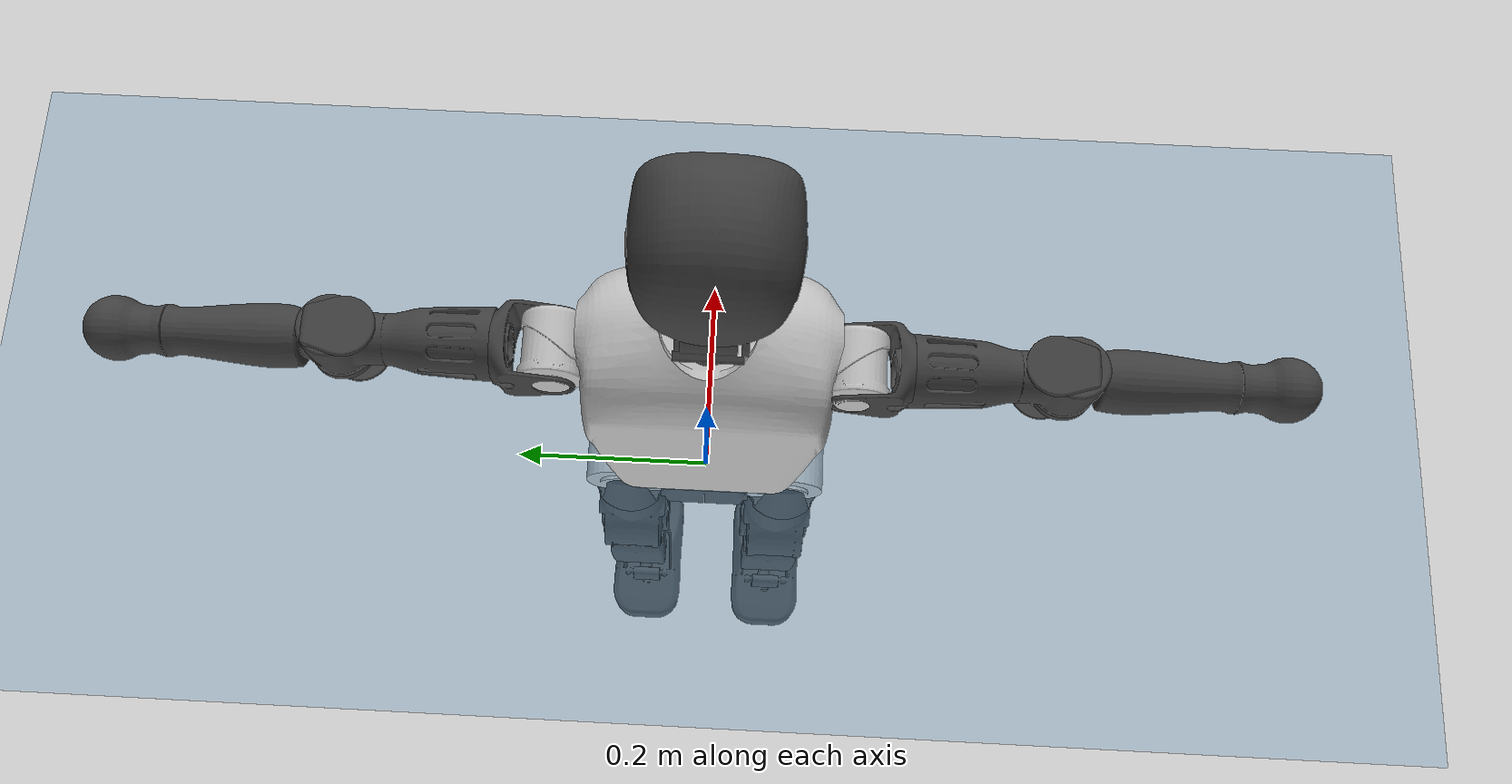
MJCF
<mujoco model="T1">
  <compiler angle="radian" assetdir="assets" balanceinertia="true" inertiafromgeom="false"/>

  <option timestep="0.005" density="1.2" viscosity="2e-05"/>

  <size nkey="1"/>

  <visual>
    <quality shadowsize="8192"/>
    <map shadowclip="0.5"/>
  </visual>

  <default>
    <default class="/">
      <joint armature="0.01" damping="0.01" frictionloss="0.1"/>
      <geom contype="0" conaffinity="0" group="1" solref="-1000 -80"/>
      <site size="0.01 0.005 0.005" group="5"/>
      <general forcelimited="true" biastype="affine" gainprm="25" biasprm="0 -25 -0.6"/>
      <default class="t1">
        <geom rgba="0.25 0.25 0.25 1"/>
        <default class="visual">
          <geom type="mesh" group="2"/>
        </default>
        <default class="collision">
          <geom group="3"/>
        </default>
        <default class="foot">
          <geom size="0.1115 0.05 0.015" type="box" condim="6" group="4" priority="1" solimp="0.015 1 0.015"/>
        </default>
        <default class="reward_collision_sphere">
          <geom group="5" rgba="1 0 0 1"/>
        </default>
      </default>
    </default>
  </default>

  <asset>
    <texture type="skybox" colorspace="auto" name="//unnamed_texture_0" builtin="gradient" rgb1="0.95 0.95 0.95" rgb2="0.95 0.95 0.95" width="100" height="600"/>
    <texture type="2d" colorspace="auto" name="texplane" builtin="checker" rgb1="0.345 0.575 0.748" rgb2="0.345 0.575 0.748" markrgb="1 1 1" width="512" height="512"/>
    <material name="MatPlane" class="/" texture="texplane" texuniform="true" texrepeat="2 2" specular="0.9"/>
    <mesh name="Trunk" class="/" file="Trunk.stl"/>
    <mesh name="H1" class="/" file="H1.stl"/>
    <mesh name="H2" class="/" file="H2.stl"/>
    <mesh name="AL1" class="/" file="AL1.stl"/>
    <mesh name="AL2" class="/" file="AL2.stl"/>
    <mesh name="AL3" class="/" file="AL3.stl"/>
    <mesh name="left_hand_link" class="/" file="left_hand_link.stl"/>
    <mesh name="AR1" class="/" file="AR1.stl"/>
    <mesh name="AR2" class="/" file="AR2.stl"/>
    <mesh name="AR3" class="/" file="AR3.stl"/>
    <mesh name="right_hand_link" class="/" file="right_hand_link.stl"/>
    <mesh name="Waist" class="/" file="Waist.stl"/>
    <mesh name="Hip_Pitch_Left" class="/" file="Hip_Pitch_Left.stl"/>
    <mesh name="Hip_Roll_Left" class="/" file="Hip_Roll_Left.stl"/>
    <mesh name="Hip_Yaw_Left" class="/" file="Hip_Yaw_Left.stl"/>
    <mesh name="Shank_Left" class="/" file="Shank_Left.stl"/>
    <mesh name="Ankle_Cross_Left" class="/" file="Ankle_Cross_Left.stl"/>
    <mesh name="left_foot_link" class="/" file="left_foot_link.stl"/>
    <mesh name="Hip_Pitch_Right" class="/" file="Hip_Pitch_Right.stl"/>
    <mesh name="Hip_Roll_Right" class="/" file="Hip_Roll_Right.stl"/>
    <mesh name="Hip_Yaw_Right" class="/" file="Hip_Yaw_Right.stl"/>
    <mesh name="Shank_Right" class="/" file="Shank_Right.stl"/>
    <mesh name="Ankle_Cross_Right" class="/" file="Ankle_Cross_Right.stl"/>
    <mesh name="right_foot_link" class="/" file="right_foot_link.stl"/>
  </asset>

  <worldbody>
    <geom name="floor" class="/" size="100 100 0.125" type="plane" group="0" material="MatPlane"/>
    <light name="toplight_shadow" class="/" pos="0 0 5" dir="0.0990148 0.0990148 -0.990148" type="directional" ambient="0.04 0.04 0.04" diffuse="0.55 0.55 0.55" specular="0.12 0.12 0.12"/>
    <light name="toplight_fill" class="/" pos="0 0 5" dir="0.0990148 0.0990148 -0.990148" type="directional" castshadow="false" ambient="0.04 0.04 0.04" diffuse="0.3 0.3 0.3" specular="0.08 0.08 0.08"/>
    <body name="trunk" childclass="t1" pos="-0.00089014 0.000763432 0.00283991" quat="1 -0.000510487 0.000278597 0.000638438">
      <inertial pos="0.0358207 -0.00294547 0.108078" quat="0.999966 -0.00175237 -0.00792692 -0.00113145" mass="7.37904" diaginertia="0.0171412 0.0390692 0.059629"/>
      <joint name="//unnamed_joint_0" type="free" armature="0" damping="0" frictionloss="0"/>
      <geom name="//unnamed_geom_1" class="visual" rgba="0.76 0.76 0.76 1" mesh="Trunk"/>
      <geom name="//unnamed_geom_2" class="collision" size="0.0648923 0.086523 0.129785" pos="0.0425957 0 0.121438" type="box"/>
      <geom name="//unnamed_geom_3" class="reward_collision_sphere" size="0.0995015" pos="0.0425957 0 0.101198"/>
      <geom name="//unnamed_geom_4" class="reward_collision_sphere" size="0.0129785" pos="0.0425957 0.0742713 0"/>
      <geom name="//unnamed_geom_5" class="reward_collision_sphere" size="0.0129785" pos="0.0425957 -0.0742713 0"/>
      <geom name="//unnamed_geom_6" class="reward_collision_sphere" size="0.0129785" pos="0.0425957 0.0934945 0.182157"/>
      <geom name="//unnamed_geom_7" class="reward_collision_sphere" size="0.0129785" pos="0.0425957 -0.0934945 0.182157"/>
      <site name="imu" pos="-0.00856011 0.00756478 -0.00911721" size="0.0086523"/>
      <camera name="track" pos="0 -1.74756 0" quat="0.707107 0.707107 0 0" mode="trackcom"/>
      <camera name="ego_camera" pos="0.0866112 0 0.425033" quat="-0.5 -0.5 0.5 0.5"/>
      <body name="H1" pos="0.0439209 -0.000359866 0.244305" quat="1 0.00025865 0.000420215 -0.000858155">
        <inertial pos="-0.00101889 -0.00252353 0.0595392" quat="0.763465 -0.0159312 0.000521341 0.645652" mass="0.300351" diaginertia="4.33144e-05 0.000118841 0.000162894"/>
        <joint name="AAHead_yaw" pos="0 0 0" axis="-0.00995808 0.00870236 0.999913" range="-1.58155 1.57621" armature="0.0094866" damping="0.000433997" frictionloss="0.0878746"/>
        <geom name="//unnamed_geom_8" class="visual" mesh="H1"/>
        <body name="H2" pos="0.00056363 -0.00298216 0.0623276" quat="0.999999 0.000498425 0.00043402 -0.00105586">
          <inertial pos="0.00525061 -0.000316756 0.100745" quat="0.988641 0.104464 -0.0747583 -0.0780235" mass="0.4084" diaginertia="0.000367693 0.00099648 0.00190355"/>
          <joint name="Head_pitch" pos="0 0 0" axis="0.0133279 -0.999897 -0.00535982" stiffness="0.00943947" range="-1.21623 0.295474" armature="0.00954754" damping="0" frictionloss="0.0902976"/>
          <geom name="//unnamed_geom_9" class="visual" mesh="H2"/>
          <geom name="//unnamed_geom_10" class="collision" size="0.0692184" pos="0.00709928 0 0.111318"/>
          <geom name="//unnamed_geom_11" class="reward_collision_sphere" size="0.0778707" pos="0.0141986 0 0.101198"/>
        </body>
      </body>
      <body name="AL1" pos="0.0420811 0.0960393 0.223182" quat="0.999999 0.00108952 0.000778394 0.000886752">
        <inertial pos="-0.00109348 0.0417579 -0.000262708" quat="0.503452 0.497774 -0.504448 0.494256" mass="0.339386" diaginertia="0.00025544 0.000645266 0.000303828"/>
        <joint name="Left_Shoulder_Pitch" pos="0 0 0" axis="-0.00575247 0.999983 -0.00101361" range="-3.2634 1.24084" armature="0.00819088" damping="0.00364056" frictionloss="0.074252"/>
        <geom name="//unnamed_geom_12" class="visual" rgba="0.76 0.76 0.76 1" mesh="AL1"/>
        <body name="AL2" pos="-0.00197488 0.0445321 -0.000154327" quat="1 -0.000222122 5.84092e-05 -0.000146829">
          <inertial pos="0.00169953 0.0326337 0.00207598" quat="0.491304 0.509711 -0.488317 0.510256" mass="0.110404" diaginertia="7.43881e-05 0.000177335 0.000200398"/>
          <joint name="Left_Shoulder_Roll" pos="0 0 0" axis="-1 -0.000247964 -0.00014545" stiffness="0.0100049" range="-1.53461 1.77716" armature="0.00799225" damping="0" frictionloss="0.0851734"/>
          <geom name="//unnamed_geom_13" class="visual" mesh="AL2"/>
          <body name="AL3" pos="0.00345387 0.0544249 -0.00129434" quat="1 0.000159026 -0.000101506 0.000562118">
            <inertial pos="0.00254474 0.074689 5.20773e-05" quat="0.703006 0.711091 0.00490559 -0.0103793" mass="0.655113" diaginertia="0.00219945 0.0066307 0.000636942"/>
            <joint name="Left_Elbow_Pitch" pos="0 0 0" axis="0.00199478 -0.999984 -0.00531495" range="-2.23871 2.32291" armature="0.00824596" damping="0.0156049" frictionloss="0.0743304"/>
            <geom name="//unnamed_geom_14" class="visual" mesh="AL3"/>
            <geom name="//unnamed_geom_15" class="collision" size="0.0259569 0.0648923" pos="0 0.043689 0" quat="0.707105 0.707108 0 0" type="cylinder"/>
            <geom name="//unnamed_geom_16" class="reward_collision_sphere" size="0.0311483"/>
            <body name="left_hand_link" pos="-0.0023331 0.131578 0.0020109" quat="0.999999 0.000423238 0.000382659 -0.000996501">
              <inertial pos="0.000976786 0.0953854 0.00299422" quat="0.707852 0.706361 -9.68781e-05 -0.00014592" mass="0.213471" diaginertia="0.00153749 0.004308 0.000232093"/>
              <joint name="Left_Elbow_Yaw" pos="0 0 0" axis="0.00766623 -0.00703977 0.999946" range="-2.4902 -0.0175288" armature="0.00951921" damping="0.00686301" frictionloss="0.0746038"/>
              <geom name="//unnamed_geom_17" class="visual" mesh="left_hand_link"/>
              <geom name="//unnamed_geom_18" class="collision" size="0.0259569 0.0757076" pos="0 0.113591 0" quat="0.707105 0.707108 0 0" type="cylinder"/>
              <geom name="//unnamed_geom_19" class="reward_collision_sphere" size="0.0432615"/>
              <geom name="//unnamed_geom_20" class="reward_collision_sphere" size="0.0302831" pos="0 0.0961158 0"/>
              <geom name="//unnamed_geom_21" class="reward_collision_sphere" size="0.0302831" pos="0 0.187863 0"/>
            </body>
          </body>
        </body>
      </body>
      <body name="AR1" pos="0.038072 -0.0887662 0.221002" quat="1 -0.000437318 8.06901e-05 -0.000338177">
        <inertial pos="-0.00257448 -0.0379378 0.00269848" quat="0.502607 0.494488 -0.502334 0.500529" mass="0.351352" diaginertia="0.000236803 0.000632473 0.000314523"/>
        <joint name="Right_Shoulder_Pitch" pos="0 0 0" axis="0.00405931 -0.999992 -0.000616492" stiffness="0.00363927" range="-1.22238 3.31211" armature="0.00838761" damping="0.0120627" frictionloss="0.0742737"/>
        <geom name="//unnamed_geom_22" class="visual" rgba="0.76 0.76 0.76 1" mesh="AR1"/>
        <body name="AR2" pos="-0.00112034 -0.0412133 0.000370215" quat="1 0.000475553 5.77328e-05 -1.09602e-05">
          <inertial pos="0.00410577 -0.0339575 0.00301829" quat="0.512218 0.487981 -0.512354 0.486827" mass="0.105174" diaginertia="7.15017e-05 0.000181115 0.000194166"/>
          <joint name="Right_Shoulder_Roll" pos="0 0 0" axis="-0.999822 0.0187969 -0.00139319" range="-1.68583 1.60095" armature="0.00758206" damping="0.0197474" frictionloss="0.0841117"/>
          <geom name="//unnamed_geom_23" class="visual" mesh="AR2"/>
          <body name="AR3" pos="0.000654295 -0.0528593 -0.00136512" quat="1 7.04043e-05 6.7608e-06 1.93386e-05">
            <inertial pos="-0.000793281 -0.0764823 0.00261264" quat="0.701829 0.712257 0.000134086 0.011203" mass="0.668673" diaginertia="0.00240865 0.00633278 0.000685813"/>
            <joint name="Right_Elbow_Pitch" pos="0 0 0" axis="0.00263017 0.999922 0.0121946" stiffness="0.00238185" range="-2.21506 2.21413" armature="0.00873943" damping="0.0205286" frictionloss="0.0860671"/>
            <geom name="//unnamed_geom_24" class="visual" mesh="AR3"/>
            <geom name="//unnamed_geom_25" class="collision" size="0.0259569 0.0648923" pos="0 -0.043689 0" quat="0.707105 0.707108 0 0" type="cylinder"/>
            <geom name="//unnamed_geom_26" class="reward_collision_sphere" size="0.0311483"/>
            <body name="right_hand_link" pos="-1.2851e-05 -0.128823 -0.00116877" quat="0.999999 -0.000373457 -0.000379014 -0.00105177">
              <inertial pos="7.47277e-05 -0.0953739 -0.00197764" quat="0.709201 0.705 -0.00201696 -0.00227089" mass="0.20738" diaginertia="0.00147778 0.00413179 0.000219744"/>
              <joint name="Right_Elbow_Yaw" pos="0 0 0" axis="-0.000151851 0.000174256 1" stiffness="0.00130322" range="-0.0141738 2.4362" armature="0.00818825" damping="0" frictionloss="0.0987974"/>
              <geom name="//unnamed_geom_27" class="visual" mesh="right_hand_link"/>
              <geom name="//unnamed_geom_28" class="collision" size="0.0259569 0.0757076" pos="0 -0.113591 0" quat="0.707105 0.707108 0 0" type="cylinder"/>
              <geom name="//unnamed_geom_29" class="reward_collision_sphere" size="0.0432615"/>
              <geom name="//unnamed_geom_30" class="reward_collision_sphere" size="0.0302831" pos="0 -0.0961158 0"/>
              <geom name="//unnamed_geom_31" class="reward_collision_sphere" size="0.0302831" pos="0 -0.187863 0"/>
            </body>
          </body>
        </body>
      </body>
      <body name="Waist" pos="0.0449321 0.000695948 -0.116446" quat="0.999999 0.00108708 0.000295341 -0.000209985">
        <inertial pos="0.000592984 0.00212033 0.00749126" quat="0.983583 0.0023937 -0.180432 -0.00191179" mass="1.61929" diaginertia="0.000934735 0.00262794 0.00509401"/>
        <joint name="Waist" pos="0 0 0" axis="-0.00328452 0.00481426 0.999983" stiffness="0.00814648" range="-1.54248 1.54272" armature="0.00759987" damping="0.0184349" frictionloss="0.0857041"/>
        <geom name="//unnamed_geom_32" class="visual" mesh="Waist"/>
        <body name="Hip_Pitch_Left" pos="-0.000822394 0.0946811 0.00251937" quat="1 -0.000189849 0.000302739 0.000342799">
          <inertial pos="-0.00230371 -0.00491891 -0.0175312" quat="0.975298 0.220603 0.011313 0.00101447" mass="0.668784" diaginertia="0.000320497 0.000724443 0.0013324"/>
          <joint name="Left_Hip_Pitch" pos="0 0 0" axis="-0.00200807 0.999998 0.000717402" range="-1.81706 1.56009" armature="0.00736207" damping="0.0159581" frictionloss="0.092765"/>
          <geom name="//unnamed_geom_33" class="visual" rgba="0.76 0.76 0.76 1" mesh="Hip_Pitch_Left"/>
          <body name="Hip_Roll_Left" pos="0.00200583 -0.00325688 -0.021416" quat="1 1.40355e-06 -9.29386e-07 1.22776e-07">
            <inertial pos="0.00353041 -0.00252529 -0.0560984" quat="0.705461 -0.0103098 -0.00735371 0.708635" mass="0.243165" diaginertia="0.000318685 0.000771013 0.000552141"/>
            <joint name="Left_Hip_Roll" pos="0 0 0" axis="-0.999986 0.00362856 -0.00373522" range="-1.56671 0.193693" armature="0.00974715" damping="0.0208733" frictionloss="0.0864977"/>
            <geom name="//unnamed_geom_34" class="visual" mesh="Hip_Roll_Left"/>
            <geom name="//unnamed_geom_35" class="reward_collision_sphere" size="0.0475877"/>
            <body name="Hip_Yaw_Left" pos="0.00080671 0.00233087 -0.0808349" quat="1 3.56432e-05 -0.000278736 0.000407248">
              <inertial pos="-0.00558331 0.000410631 -0.0884557" quat="0.694644 -0.0377316 -0.0308915 0.717699" mass="1.43406" diaginertia="0.00472696 0.0131292 0.00277765"/>
              <joint name="Left_Hip_Yaw" pos="0 0 0" axis="-0.00242398 -0.00327745 -0.999992" stiffness="0.00735331" range="-0.982254 1.01595" armature="0.00860619" damping="0" frictionloss="0.098791"/>
              <geom name="//unnamed_geom_36" class="visual" mesh="Hip_Yaw_Left"/>
              <geom name="//unnamed_geom_37" class="collision" size="0.0432615 0.0692184" type="cylinder"/>
              <body name="Shank_Left" pos="-0.00986759 -0.00167875 -0.139036" quat="0.999999 -0.000964073 -0.000137423 -0.00103697">
                <inertial pos="-0.00383335 -0.00242586 -0.123835" quat="0.997515 -6.84656e-05 -0.0142069 0.0690035" mass="1.11884" diaginertia="0.00621987 0.0181176 0.00196173"/>
                <joint name="Left_Knee_Pitch" pos="0 0 0" axis="-0.0122078 0.999859 0.0115554" range="0.000942067 2.29256" armature="0.00993786" damping="0" frictionloss="0.0872962"/>
                <geom name="//unnamed_geom_38" class="visual" mesh="Shank_Left"/>
                <geom name="//unnamed_geom_39" class="collision" size="0.0432615 0.0648923" pos="0 0 -0.121438" type="cylinder"/>
                <geom name="//unnamed_geom_40" class="reward_collision_sphere" size="0.05624"/>
                <body name="Ankle_Cross_Left" pos="0.00250445 -0.00317656 -0.284478" quat="0.999999 -0.000235338 -0.000619612 0.00106257">
                  <inertial pos="-0.00161176 -0.000970419 -0.00679164" quat="0.44465 0.554535 0.555972 0.430898" mass="0.0459764" diaginertia="5.44639e-06 1.31653e-05 1.21682e-05"/>
                  <joint name="Left_Ankle_Pitch" pos="0 0 0" axis="0.00036737 1 -0.000402376" stiffness="0.00778212" range="-0.89894 0.382641" armature="0.0099191" damping="0.00706326" frictionloss="0.0985726"/>
                  <geom name="//unnamed_geom_41" class="visual" mesh="Ankle_Cross_Left"/>
                  <body name="left_foot_link" pos="-0.00318548 -0.0027161 -0.0144087" quat="1 -0.000750565 0.000184344 -1.72498e-05">
                    <inertial pos="-0.00102648 0.000664102 -0.010275" quat="0.0131868 0.622428 -0.000459179 0.782566" mass="0.449393" diaginertia="0.000475501 0.00121333 0.00236344"/>
                    <joint name="Left_Ankle_Roll" pos="0 0 0" axis="-0.999939 -0.010118 -0.00433867" stiffness="0.0049224" range="-0.443493 0.467571" armature="0.00871778" damping="0.00948431" frictionloss="0.0887244"/>
                    <geom name="//unnamed_geom_42" class="visual" mesh="left_foot_link"/>
                    <geom name="left_foot" class="foot" size="0.102571 0.0416757 0.0131589" pos="0.00709928 0 -0.0151797"/>
                    <geom name="//unnamed_geom_44" class="reward_collision_sphere" size="0.044992" pos="0.00709928 0 -0.0151797"/>
                    <geom name="//unnamed_geom_45" class="reward_collision_sphere" size="0.0259569" pos="0.0674431 -0.0200969 -0.0151797"/>
                    <geom name="//unnamed_geom_46" class="reward_collision_sphere" size="0.0259569" pos="-0.0496949 -0.0200969 -0.0151797"/>
                    <site name="left_foot" class="foot" pos="0.00709928 0 -0.0151797" size="0.0086523"/>
                  </body>
                </body>
              </body>
            </body>
          </body>
        </body>
        <body name="Hip_Pitch_Right" pos="-0.00148058 -0.0931236 -0.000405778" quat="1 0.000313583 -0.000928361 -0.0001069">
          <inertial pos="-0.00165275 0.00628917 -0.020453" quat="0.97449 -0.223742 0.0175409 -0.000431836" mass="0.635919" diaginertia="0.000320529 0.000758877 0.00128174"/>
          <joint name="Right_Hip_Pitch" pos="0 0 0" axis="0.00308424 -0.999989 0.00362344" range="-1.5892 1.74359" armature="0.00943243" damping="0.00897151" frictionloss="0.0882301"/>
          <geom name="//unnamed_geom_47" class="visual" rgba="0.76 0.76 0.76 1" mesh="Hip_Pitch_Right"/>
          <body name="Hip_Roll_Right" pos="0.00216933 -0.000945238 -0.0217641" quat="1 0.000385579 0.000309759 -2.01666e-05">
            <inertial pos="0.00167873 0.00259547 -0.0543183" quat="0.712024 -0.00191063 -0.0170917 0.701945" mass="0.242384" diaginertia="0.000313071 0.000768003 0.000533454"/>
            <joint name="Right_Hip_Roll" pos="0 0 0" axis="-0.999919 -0.0124693 0.00236163" stiffness="0.0130279" range="-0.194438 1.55911" armature="0.00734482" damping="0.00807362" frictionloss="0.0887092"/>
            <geom name="//unnamed_geom_48" class="visual" mesh="Hip_Roll_Right"/>
            <geom name="//unnamed_geom_49" class="reward_collision_sphere" size="0.0475877"/>
            <body name="Hip_Yaw_Right" pos="-0.00236364 0.000326967 -0.0827303" quat="1 0.000153031 0.000406186 0.000122557">
              <inertial pos="-0.00784021 0.000151116 -0.0915259" quat="0.715369 -0.0251671 -0.0223658 0.697935" mass="1.44779" diaginertia="0.00460685 0.0127455 0.00272024"/>
              <joint name="Right_Hip_Yaw" pos="0 0 0" axis="0.00398814 -0.000427123 -0.999992" range="-0.958346 0.947161" armature="0.0082062" damping="0" frictionloss="0.0878509"/>
              <geom name="//unnamed_geom_50" class="visual" mesh="Hip_Yaw_Right"/>
              <geom name="//unnamed_geom_51" class="collision" size="0.0432615 0.0692184" type="cylinder"/>
              <body name="Shank_Right" pos="-0.00834635 0.0019713 -0.132503" quat="1 -9.83188e-05 -0.000102078 -5.91214e-05">
                <inertial pos="-0.0034281 0.000299248 -0.126454" quat="0.999137 -0.00224552 -0.0143924 -0.0388928" mass="1.08314" diaginertia="0.00614084 0.0177465 0.00202476"/>
                <joint name="Right_Knee_Pitch" pos="0 0 0" axis="-0.00740199 -0.999973 -0.000129546" stiffness="0.000206259" range="-2.33121 -0.00686061" armature="0.0097887" damping="0" frictionloss="0.0981532"/>
                <geom name="//unnamed_geom_52" class="visual" mesh="Shank_Right"/>
                <geom name="//unnamed_geom_53" class="collision" size="0.0432615 0.0648923" pos="0 0 -0.121438" type="cylinder"/>
                <geom name="//unnamed_geom_54" class="reward_collision_sphere" size="0.05624"/>
                <body name="Ankle_Cross_Right" pos="-0.00258012 -0.00184453 -0.282744" quat="1 0.000344129 0.000738101 0.000310985">
                  <inertial pos="-0.0027836 0.000553794 -0.00742335" quat="0.443548 0.549628 0.551819 0.443475" mass="0.0468299" diaginertia="5.07979e-06 1.29624e-05 1.17609e-05"/>
                  <joint name="Right_Ankle_Pitch" pos="0 0 0" axis="0.00222976 -0.999979 0.00602717" stiffness="0.00252195" range="-0.40079 0.897136" armature="0.00909624" damping="0.02119" frictionloss="0.0860191"/>
                  <geom name="//unnamed_geom_55" class="visual" mesh="Ankle_Cross_Right"/>
                  <body name="right_foot_link" pos="0.000463233 -0.00172882 -0.0144572" quat="0.999999 -0.000463816 -0.000918315 0.000837034">
                    <inertial pos="-0.00280554 0.000222068 -0.00895757" quat="-0.00233151 0.624499 0.00350093 0.781014" mass="0.44457" diaginertia="0.00047701 0.00117307 0.00227591"/>
                    <joint name="Right_Ankle_Roll" pos="0 0 0" axis="-0.99999 -0.00431962 -0.00070481" stiffness="0.00842845" range="-0.384139 0.388466" armature="0.0091886" damping="0.00453413" frictionloss="0.0881355"/>
                    <geom name="//unnamed_geom_56" class="visual" mesh="right_foot_link"/>
                    <geom name="right_foot" class="foot" size="0.0938424 0.0423283 0.0133877" pos="0.00709928 0 -0.0151797"/>
                    <geom name="//unnamed_geom_58" class="reward_collision_sphere" size="0.0346092"/>
                    <geom name="//unnamed_geom_59" class="reward_collision_sphere" size="0.0259569" pos="0.00709928 0 -0.0151797"/>
                    <geom name="//unnamed_geom_60" class="reward_collision_sphere" size="0.0259569" pos="0.0674431 0.0200969 -0.0151797"/>
                    <geom name="//unnamed_geom_61" class="reward_collision_sphere" size="0.0259569" pos="-0.0496949 0.0200969 -0.0151797"/>
                    <site name="right_foot" class="foot" pos="0.00709928 0 -0.0151797" size="0.0086523"/>
                  </body>
                </body>
              </body>
            </body>
          </body>
        </body>
      </body>
    </body>
  </worldbody>

  <contact>
    <pair class="/" geom1="floor" geom2="left_foot" name="//unnamed_contact_0"/>
    <pair class="/" geom1="floor" geom2="right_foot" name="//unnamed_contact_1"/>
  </contact>

  <actuator>
    <general name="AAHead_yaw" class="/" joint="AAHead_yaw" forcerange="-5.77829 5.77829" gainprm="20.7377" biasprm="0 -20.7377 -0.477295"/>
    <general name="Head_pitch" class="/" joint="Head_pitch" forcerange="-6.18114 6.18114" gainprm="20.7377" biasprm="0 -20.7377 -0.477295"/>
    <general name="Left_Shoulder_Pitch" class="/" joint="Left_Shoulder_Pitch" forcerange="-15.0252 15.0252" gainprm="20.7377" biasprm="0 -20.7377 -0.477295"/>
    <general name="Left_Shoulder_Roll" class="/" joint="Left_Shoulder_Roll" forcerange="-13.9558 13.9558" gainprm="20.7377" biasprm="0 -20.7377 -0.477295"/>
    <general name="Left_Elbow_Pitch" class="/" joint="Left_Elbow_Pitch" forcerange="-14.7697 14.7697" gainprm="20.7377" biasprm="0 -20.7377 -0.477295"/>
    <general name="Left_Elbow_Yaw" class="/" joint="Left_Elbow_Yaw" forcerange="-16.8794 16.8794" gainprm="20.7377" biasprm="0 -20.7377 -0.477295"/>
    <general name="Right_Shoulder_Pitch" class="/" joint="Right_Shoulder_Pitch" forcerange="-16.7544 16.7544" gainprm="20.7377" biasprm="0 -20.7377 -0.477295"/>
    <general name="Right_Shoulder_Roll" class="/" joint="Right_Shoulder_Roll" forcerange="-14.3801 14.3801" gainprm="20.7377" biasprm="0 -20.7377 -0.477295"/>
    <general name="Right_Elbow_Pitch" class="/" joint="Right_Elbow_Pitch" forcerange="-15.6388 15.6388" gainprm="20.7377" biasprm="0 -20.7377 -0.477295"/>
    <general name="Right_Elbow_Yaw" class="/" joint="Right_Elbow_Yaw" forcerange="-15.826 15.826" gainprm="20.7377" biasprm="0 -20.7377 -0.477295"/>
    <general name="Waist" class="/" joint="Waist" forcerange="-26.8301 26.8301" gainprm="20.7377" biasprm="0 -20.7377 -0.477295"/>
    <general name="Left_Hip_Pitch" class="/" joint="Left_Hip_Pitch" forcerange="-35.9481 35.9481" gainprm="20.7377" biasprm="0 -20.7377 -0.477295"/>
    <general name="Left_Hip_Roll" class="/" joint="Left_Hip_Roll" forcerange="-27.8585 27.8585" gainprm="20.7377" biasprm="0 -20.7377 -0.477295"/>
    <general name="Left_Hip_Yaw" class="/" joint="Left_Hip_Yaw" forcerange="-24.6285 24.6285" gainprm="20.7377" biasprm="0 -20.7377 -0.477295"/>
    <general name="Left_Knee_Pitch" class="/" joint="Left_Knee_Pitch" forcerange="-49.0724 49.0724" gainprm="20.7377" biasprm="0 -20.7377 -0.477295"/>
    <general name="Left_Ankle_Pitch" class="/" joint="Left_Ankle_Pitch" forcerange="-17.489 17.489" gainprm="20.7377" biasprm="0 -20.7377 -0.477295"/>
    <general name="Left_Ankle_Roll" class="/" joint="Left_Ankle_Roll" forcerange="-13.0369 13.0369" gainprm="20.7377" biasprm="0 -20.7377 -0.477295"/>
    <general name="Right_Hip_Pitch" class="/" joint="Right_Hip_Pitch" forcerange="-40.8258 40.8258" gainprm="20.7377" biasprm="0 -20.7377 -0.477295"/>
    <general name="Right_Hip_Roll" class="/" joint="Right_Hip_Roll" forcerange="-25.59 25.59" gainprm="20.7377" biasprm="0 -20.7377 -0.477295"/>
    <general name="Right_Hip_Yaw" class="/" joint="Right_Hip_Yaw" forcerange="-28.5377 28.5377" gainprm="20.7377" biasprm="0 -20.7377 -0.477295"/>
    <general name="Right_Knee_Pitch" class="/" joint="Right_Knee_Pitch" forcerange="-51.833 51.833" gainprm="20.7377" biasprm="0 -20.7377 -0.477295"/>
    <general name="Right_Ankle_Pitch" class="/" joint="Right_Ankle_Pitch" forcerange="-15.7737 15.7737" gainprm="20.7377" biasprm="0 -20.7377 -0.477295"/>
    <general name="Right_Ankle_Roll" class="/" joint="Right_Ankle_Roll" forcerange="-13.0178 13.0178" gainprm="20.7377" biasprm="0 -20.7377 -0.477295"/>
  </actuator>

  <sensor>
    <gyro site="imu" name="imu_angular_velocity"/>
    <velocimeter site="imu" name="imu_linear_velocity"/>
    <framelinvel objtype="site" objname="left_foot" name="left_foot_global_linear_velocity"/>
    <framelinvel objtype="site" objname="right_foot" name="right_foot_global_linear_velocity"/>
  </sensor>

  <keyframe>
    <key name="home" qpos="0 0 0.6385 1 0 0 0 0 0 0 1.4 0 -0.4 0 -1.4 0 0.4 0 -0.4 0 0 0.8 -0.4 0 0.4 0 0 -0.8 0.4 0"/>
  </keyframe>
</mujoco>
